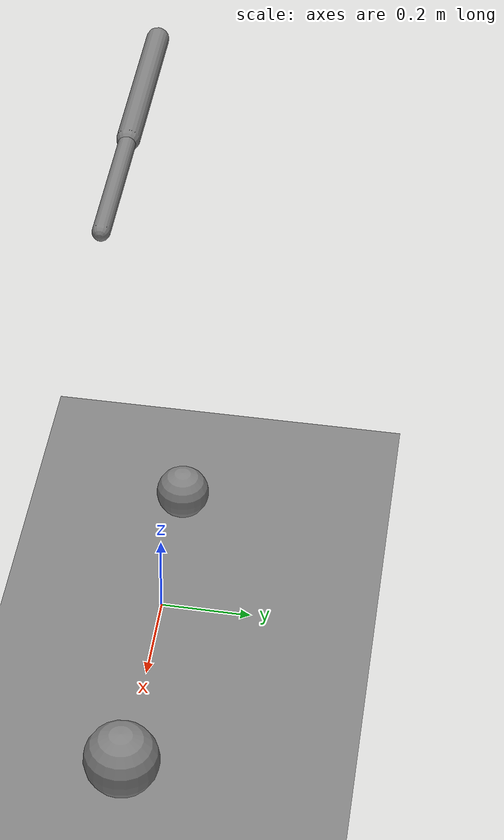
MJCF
<mujoco model="composite_model">
  <option gravity="0 0 -9.81" timestep="0.002"/>
  <worldbody>
    <geom name="floor" type="plane" size="5 5 0.1"
          friction="1 0.005 0.0001"/>

    <!-- Two-link arm with spring, damper, motor, tendon -->
    <body name="upper" pos="0 0 1.5">
      <joint name="joint1" type="hinge" axis="0 1 0"
             stiffness="8" damping="0.5" springref="0.2"/>
      <geom name="upper_geom" type="capsule" fromto="0 0 0 0.3 0 0"
            size="0.02" mass="1.0"/>

      <body name="lower" pos="0.3 0 0">
        <joint name="joint2" type="hinge" axis="0 1 0"
               damping="0.3"/>
        <geom name="lower_geom" type="capsule" fromto="0 0 0 0.25 0 0"
              size="0.015" mass="0.5"/>
        <site name="tip" pos="0.25 0 0"/>
      </body>
    </body>

    <!-- Ball on vertical slide joint, slightly penetrating floor.
         Slide joint allows vertical translation so contact forces are
         physically resolvable (unlike hinge which locks position). -->
    <body name="ball1" pos="0.5 0 0.078">
      <joint name="ball1_slide" type="slide" axis="0 0 1"/>
      <geom name="ball1_geom" type="sphere" size="0.08" mass="0.3"
            friction="1 0.005 0.0001"/>
    </body>

    <!-- Second ball on vertical slide joint -->
    <body name="ball2" pos="-0.3 0 0.058">
      <joint name="ball2_slide" type="slide" axis="0 0 1"/>
      <geom name="ball2_geom" type="sphere" size="0.06" mass="0.2"
            friction="0.8 0.005 0.0001"/>
    </body>
  </worldbody>

  <tendon>
    <fixed name="coupling" stiffness="10" damping="0.5" springlength="0.1">
      <joint joint="joint1" coef="1.0"/>
      <joint joint="joint2" coef="-0.5"/>
    </fixed>
  </tendon>

  <equality>
    <joint name="ball_coupling" joint1="ball1_slide" joint2="ball2_slide"
           polycoef="0 0.3 0 0 0"
           solref="0.02 1" solimp="0.9 0.95 0.001 0.5 2"/>
  </equality>

  <actuator>
    <motor name="motor" joint="joint1" gear="1"/>
  </actuator>

  <sensor>
    <jointpos name="joint1_pos" joint="joint1"/>
    <framepos name="tip_pos" objtype="site" objname="tip"/>
    <subtreecom name="upper_com" body="upper"/>
  </sensor>
</mujoco>
